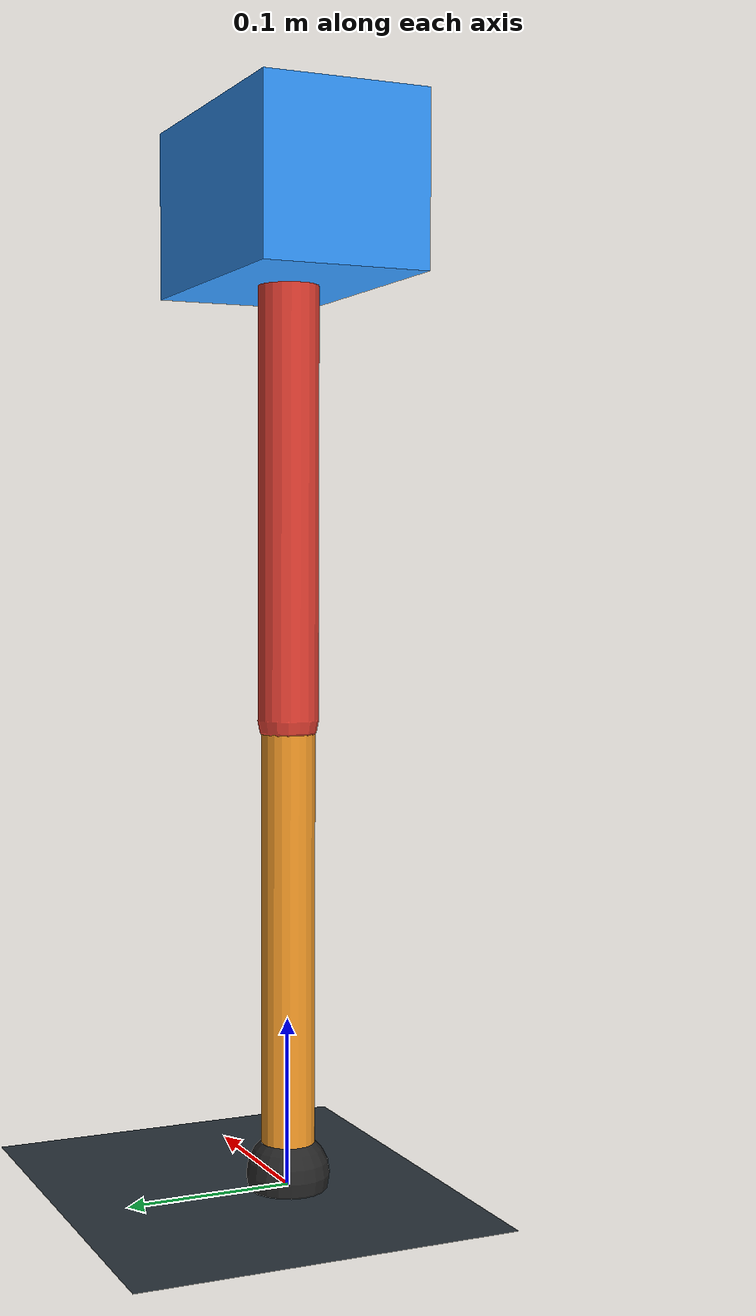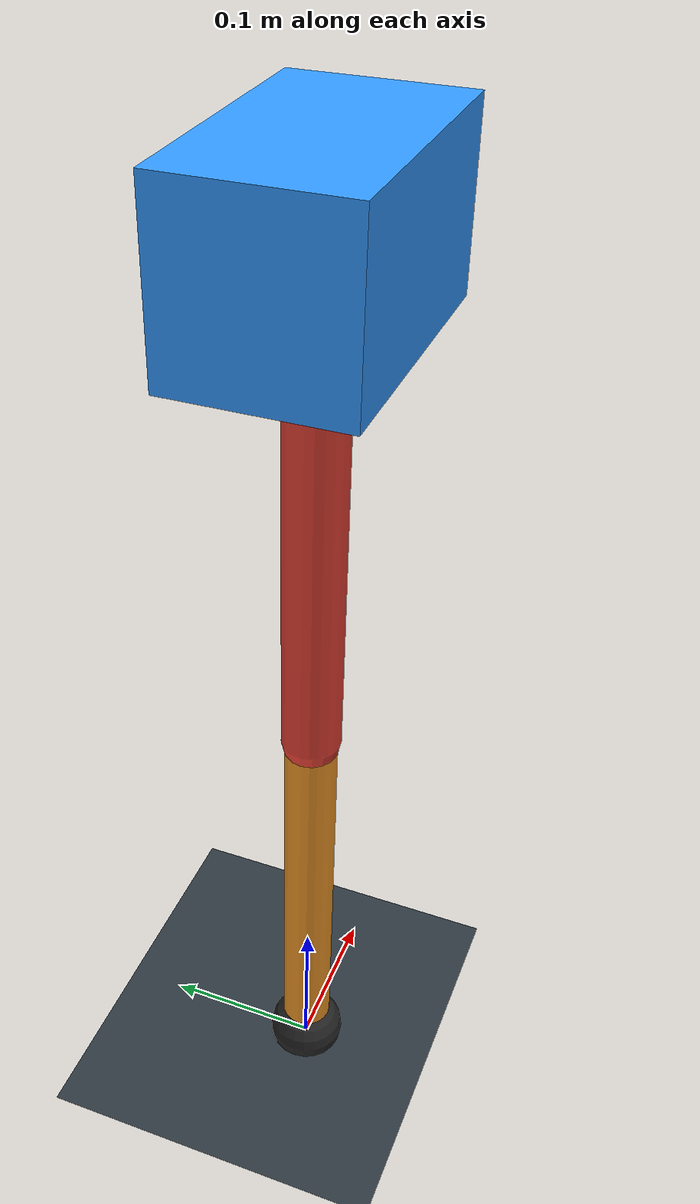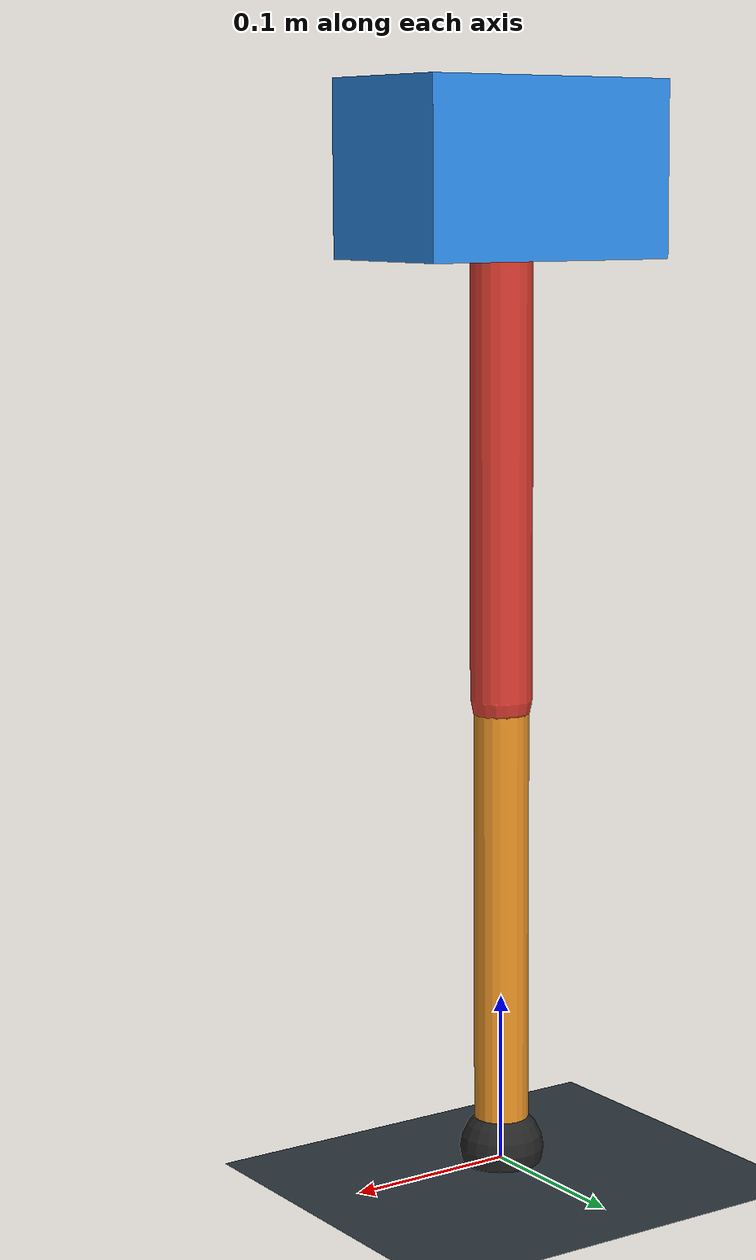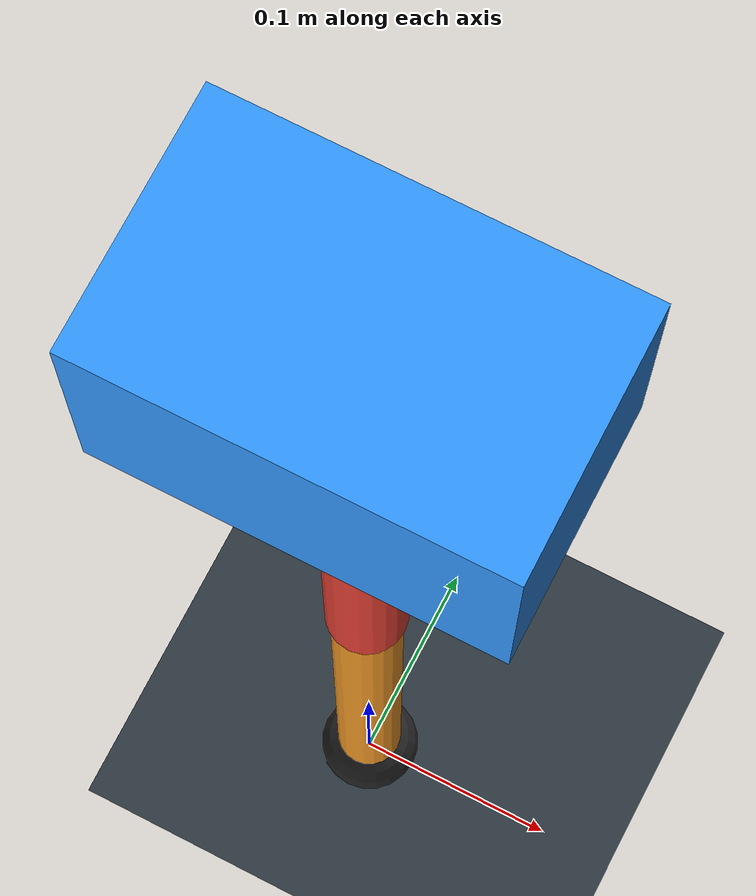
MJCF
<mujoco model="single_axis_two_bar">
  <compiler angle="radian" inertiafromgeom="true"/>
  <option timestep="0.001" integrator="implicitfast" gravity="0 0 -9.81"/>
  <default>
    <joint damping="0.08"/>
    <geom friction="1.2 0.01 0.0001" condim="3"/>
  </default>
  <worldbody>
    <geom name="floor" type="plane" size="5 5 0.1" rgba="0.18 0.22 0.25 1"/>
    <body name="carriage" pos="0 0 0.5810928152428207">
      <joint name="pole_slide" type="slide" axis="0 0 1"/>
      <geom name="payload" type="box" size="0.08 0.05 0.05" mass="3.2752588540664043" rgba="0.2 0.6 1 1"/>
      <body name="thigh" pos="0 0 0">
        <joint name="hip" type="hinge" axis="0 1 0"/>
        <geom name="thigh_link" type="capsule" fromto="0 0 0 0 0 -0.3032357005011197" size="0.018" mass="0.21605944351330714" rgba="0.9 0.25 0.2 1"/>
        <body name="shank" pos="0 0 -0.3032357005011197">
          <joint name="knee" type="hinge" axis="0 1 0"/>
          <geom name="shank_link" type="capsule" fromto="0 0 0 0 0 -0.27005586160488104" size="0.016" mass="0.19241836986684827" rgba="0.95 0.6 0.15 1"/>
          <geom name="foot" type="sphere" pos="0 0 -0.27005586160488104" size="0.025" mass="0.03" rgba="0.15 0.15 0.15 1"/>
          <site name="toe" pos="0 0 -0.27005586160488104" size="0.008"/>
        </body>
      </body>
    </body>
  </worldbody>
  <actuator>
    <motor name="hip_motor" joint="hip" ctrlrange="-9.905897571884916 9.905897571884916"/>
    <motor name="knee_motor" joint="knee" ctrlrange="-161.4393034791886 161.4393034791886"/>
  </actuator>
</mujoco>
